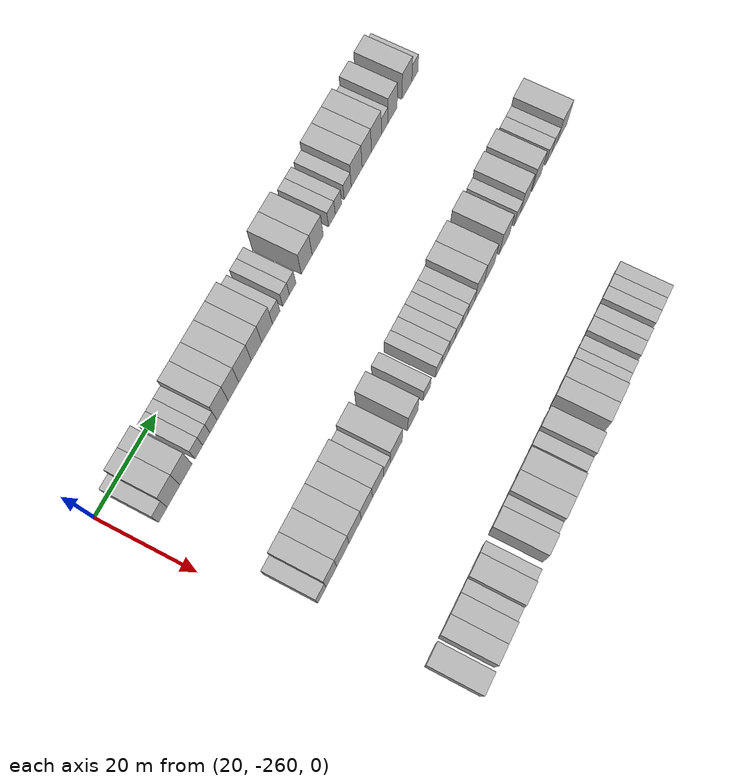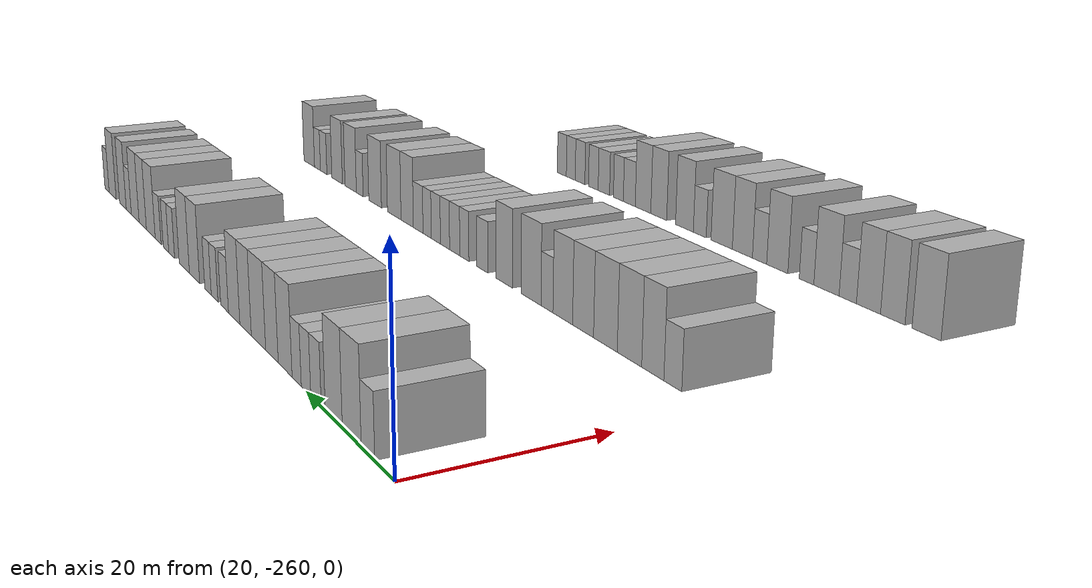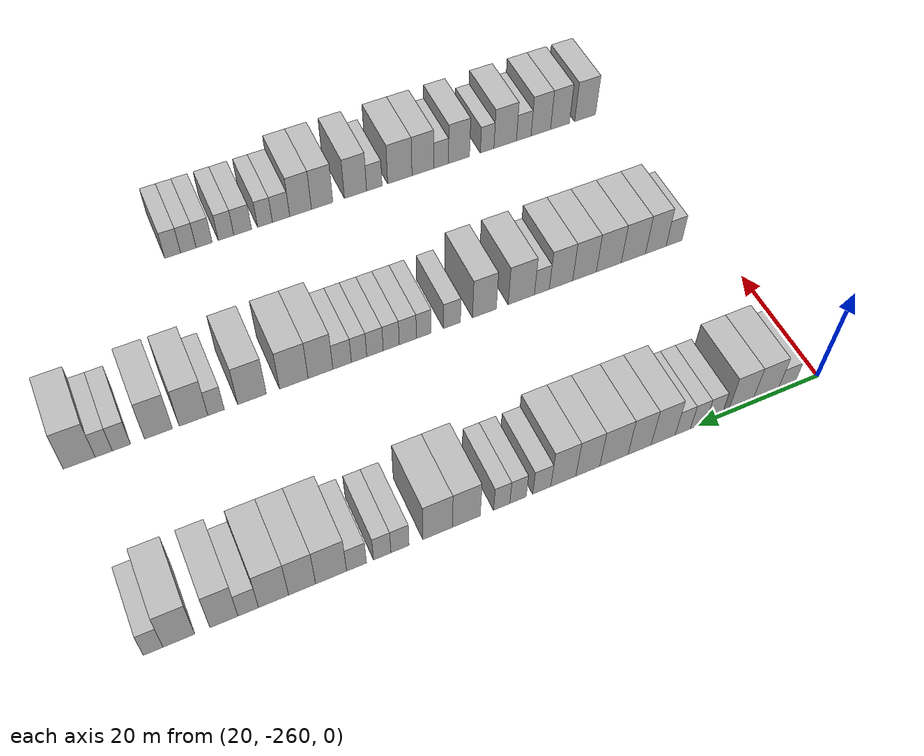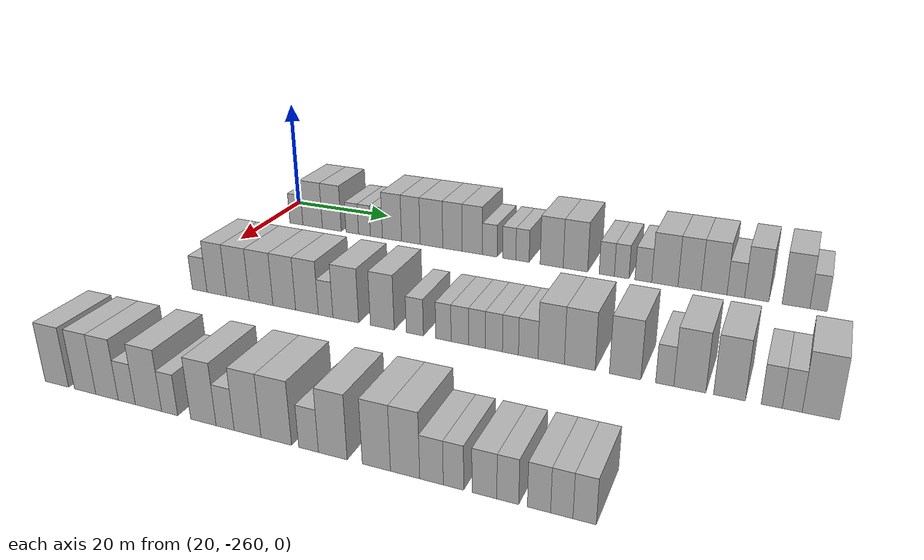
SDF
<sdf version="1.6">
 <world name="default">
  <model name="building_45">
   <static>1</static>
   <pose>25.0000 -254.4149 0 0.000000 0.000000 0.000000</pose>
   <link name="link">
    <pose>0 0 3.00 0 0 0</pose>
    <collision name="collision"><geometry><box><size>10.0000 2.8730 6.0000</size></box></geometry></collision>
    <visual name="visual">
     <cast_shadows>0</cast_shadows>
     <geometry><box><size>10.0000 2.8730 6.0000</size></box></geometry>
     <material>
      <script>
       <uri>model://HANNAS_wall/materials/scripts</uri>
       <uri>model://HANNAS_wall/materials/textures</uri>
       <name>vrc/HANNAS_wall</name>
      </script>
     </material>
    </visual>
   </link>
  </model>
  <model name="building_46">
   <static>1</static>
   <pose>25.0000 -250.8645 0 0.000000 0.000000 0.000000</pose>
   <link name="link">
    <pose>0 0 4.50 0 0 0</pose>
    <collision name="collision"><geometry><box><size>10.0000 4.2280 9.0000</size></box></geometry></collision>
    <visual name="visual">
     <cast_shadows>0</cast_shadows>
     <geometry><box><size>10.0000 4.2280 9.0000</size></box></geometry>
     <material>
      <script>
       <uri>model://HANNAS_wall/materials/scripts</uri>
       <uri>model://HANNAS_wall/materials/textures</uri>
       <name>vrc/HANNAS_wall</name>
      </script>
     </material>
    </visual>
   </link>
  </model>
  <model name="building_47">
   <static>1</static>
   <pose>25.0000 -246.7290 0 0.000000 0.000000 0.000000</pose>
   <link name="link">
    <pose>0 0 4.50 0 0 0</pose>
    <collision name="collision"><geometry><box><size>10.0000 4.0431 9.0000</size></box></geometry></collision>
    <visual name="visual">
     <cast_shadows>0</cast_shadows>
     <geometry><box><size>10.0000 4.0431 9.0000</size></box></geometry>
     <material>
      <script>
       <uri>model://HANNAS_wall/materials/scripts</uri>
       <uri>model://HANNAS_wall/materials/textures</uri>
       <name>vrc/HANNAS_wall</name>
      </script>
     </material>
    </visual>
   </link>
  </model>
  <model name="building_48">
   <static>1</static>
   <pose>25.0000 -242.3892 0 0.000000 0.000000 0.000000</pose>
   <link name="link">
    <pose>0 0 3.00 0 0 0</pose>
    <collision name="collision"><geometry><box><size>10.0000 2.6364 6.0000</size></box></geometry></collision>
    <visual name="visual">
     <cast_shadows>0</cast_shadows>
     <geometry><box><size>10.0000 2.6364 6.0000</size></box></geometry>
     <material>
      <script>
       <uri>model://HANNAS_wall/materials/scripts</uri>
       <uri>model://HANNAS_wall/materials/textures</uri>
       <name>vrc/HANNAS_wall</name>
      </script>
     </material>
    </visual>
   </link>
  </model>
  <model name="building_49">
   <static>1</static>
   <pose>25.0000 -239.8340 0 0.000000 0.000000 0.000000</pose>
   <link name="link">
    <pose>0 0 3.00 0 0 0</pose>
    <collision name="collision"><geometry><box><size>10.0000 2.4740 6.0000</size></box></geometry></collision>
    <visual name="visual">
     <cast_shadows>0</cast_shadows>
     <geometry><box><size>10.0000 2.4740 6.0000</size></box></geometry>
     <material>
      <script>
       <uri>model://HANNAS_wall/materials/scripts</uri>
       <uri>model://HANNAS_wall/materials/textures</uri>
       <name>vrc/HANNAS_wall</name>
      </script>
     </material>
    </visual>
   </link>
  </model>
  <model name="building_50">
   <static>1</static>
   <pose>25.0000 -237.3572 0 0.000000 0.000000 0.000000</pose>
   <link name="link">
    <pose>0 0 3.00 0 0 0</pose>
    <collision name="collision"><geometry><box><size>10.0000 2.4794 6.0000</size></box></geometry></collision>
    <visual name="visual">
     <cast_shadows>0</cast_shadows>
     <geometry><box><size>10.0000 2.4794 6.0000</size></box></geometry>
     <material>
      <script>
       <uri>model://HANNAS_wall/materials/scripts</uri>
       <uri>model://HANNAS_wall/materials/textures</uri>
       <name>vrc/HANNAS_wall</name>
      </script>
     </material>
    </visual>
   </link>
  </model>
  <model name="building_51">
   <static>1</static>
   <pose>25.0000 -234.1744 0 0.000000 0.000000 0.000000</pose>
   <link name="link">
    <pose>0 0 4.50 0 0 0</pose>
    <collision name="collision"><geometry><box><size>10.0000 3.8864 9.0000</size></box></geometry></collision>
    <visual name="visual">
     <cast_shadows>0</cast_shadows>
     <geometry><box><size>10.0000 3.8864 9.0000</size></box></geometry>
     <material>
      <script>
       <uri>model://HANNAS_wall/materials/scripts</uri>
       <uri>model://HANNAS_wall/materials/textures</uri>
       <name>vrc/HANNAS_wall</name>
      </script>
     </material>
    </visual>
   </link>
  </model>
  <model name="building_52">
   <static>1</static>
   <pose>25.0000 -230.3810 0 0.000000 0.000000 0.000000</pose>
   <link name="link">
    <pose>0 0 4.50 0 0 0</pose>
    <collision name="collision"><geometry><box><size>10.0000 3.7002 9.0000</size></box></geometry></collision>
    <visual name="visual">
     <cast_shadows>0</cast_shadows>
     <geometry><box><size>10.0000 3.7002 9.0000</size></box></geometry>
     <material>
      <script>
       <uri>model://HANNAS_wall/materials/scripts</uri>
       <uri>model://HANNAS_wall/materials/textures</uri>
       <name>vrc/HANNAS_wall</name>
      </script>
     </material>
    </visual>
   </link>
  </model>
  <model name="building_53">
   <static>1</static>
   <pose>25.0000 -226.3039 0 0.000000 0.000000 0.000000</pose>
   <link name="link">
    <pose>0 0 4.50 0 0 0</pose>
    <collision name="collision"><geometry><box><size>10.0000 4.4540 9.0000</size></box></geometry></collision>
    <visual name="visual">
     <cast_shadows>0</cast_shadows>
     <geometry><box><size>10.0000 4.4540 9.0000</size></box></geometry>
     <material>
      <script>
       <uri>model://HANNAS_wall/materials/scripts</uri>
       <uri>model://HANNAS_wall/materials/textures</uri>
       <name>vrc/HANNAS_wall</name>
      </script>
     </material>
    </visual>
   </link>
  </model>
  <model name="building_54">
   <static>1</static>
   <pose>25.0000 -222.2061 0 0.000000 0.000000 0.000000</pose>
   <link name="link">
    <pose>0 0 4.50 0 0 0</pose>
    <collision name="collision"><geometry><box><size>10.0000 3.7416 9.0000</size></box></geometry></collision>
    <visual name="visual">
     <cast_shadows>0</cast_shadows>
     <geometry><box><size>10.0000 3.7416 9.0000</size></box></geometry>
     <material>
      <script>
       <uri>model://HANNAS_wall/materials/scripts</uri>
       <uri>model://HANNAS_wall/materials/textures</uri>
       <name>vrc/HANNAS_wall</name>
      </script>
     </material>
    </visual>
   </link>
  </model>
  <model name="building_55">
   <static>1</static>
   <pose>25.0000 -218.3977 0 0.000000 0.000000 0.000000</pose>
   <link name="link">
    <pose>0 0 4.50 0 0 0</pose>
    <collision name="collision"><geometry><box><size>10.0000 3.8752 9.0000</size></box></geometry></collision>
    <visual name="visual">
     <cast_shadows>0</cast_shadows>
     <geometry><box><size>10.0000 3.8752 9.0000</size></box></geometry>
     <material>
      <script>
       <uri>model://HANNAS_wall/materials/scripts</uri>
       <uri>model://HANNAS_wall/materials/textures</uri>
       <name>vrc/HANNAS_wall</name>
      </script>
     </material>
    </visual>
   </link>
  </model>
  <model name="building_56">
   <static>1</static>
   <pose>25.0000 -215.0832 0 0.000000 0.000000 0.000000</pose>
   <link name="link">
    <pose>0 0 3.00 0 0 0</pose>
    <collision name="collision"><geometry><box><size>10.0000 2.7538 6.0000</size></box></geometry></collision>
    <visual name="visual">
     <cast_shadows>0</cast_shadows>
     <geometry><box><size>10.0000 2.7538 6.0000</size></box></geometry>
     <material>
      <script>
       <uri>model://HANNAS_wall/materials/scripts</uri>
       <uri>model://HANNAS_wall/materials/textures</uri>
       <name>vrc/HANNAS_wall</name>
      </script>
     </material>
    </visual>
   </link>
  </model>
  <model name="building_57">
   <static>1</static>
   <pose>25.0000 -211.4747 0 0.000000 0.000000 0.000000</pose>
   <link name="link">
    <pose>0 0 3.00 0 0 0</pose>
    <collision name="collision"><geometry><box><size>10.0000 2.4631 6.0000</size></box></geometry></collision>
    <visual name="visual">
     <cast_shadows>0</cast_shadows>
     <geometry><box><size>10.0000 2.4631 6.0000</size></box></geometry>
     <material>
      <script>
       <uri>model://HANNAS_wall/materials/scripts</uri>
       <uri>model://HANNAS_wall/materials/textures</uri>
       <name>vrc/HANNAS_wall</name>
      </script>
     </material>
    </visual>
   </link>
  </model>
  <model name="building_58">
   <static>1</static>
   <pose>25.0000 -209.0251 0 0.000000 0.000000 0.000000</pose>
   <link name="link">
    <pose>0 0 3.00 0 0 0</pose>
    <collision name="collision"><geometry><box><size>10.0000 2.4362 6.0000</size></box></geometry></collision>
    <visual name="visual">
     <cast_shadows>0</cast_shadows>
     <geometry><box><size>10.0000 2.4362 6.0000</size></box></geometry>
     <material>
      <script>
       <uri>model://HANNAS_wall/materials/scripts</uri>
       <uri>model://HANNAS_wall/materials/textures</uri>
       <name>vrc/HANNAS_wall</name>
      </script>
     </material>
    </visual>
   </link>
  </model>
  <model name="building_59">
   <static>1</static>
   <pose>25.0000 -203.7459 0 0.000000 0.000000 0.000000</pose>
   <link name="link">
    <pose>0 0 4.50 0 0 0</pose>
    <collision name="collision"><geometry><box><size>10.0000 4.1222 9.0000</size></box></geometry></collision>
    <visual name="visual">
     <cast_shadows>0</cast_shadows>
     <geometry><box><size>10.0000 4.1222 9.0000</size></box></geometry>
     <material>
      <script>
       <uri>model://HANNAS_wall/materials/scripts</uri>
       <uri>model://HANNAS_wall/materials/textures</uri>
       <name>vrc/HANNAS_wall</name>
      </script>
     </material>
    </visual>
   </link>
  </model>
  <model name="building_60">
   <static>1</static>
   <pose>25.0000 -199.5396 0 0.000000 0.000000 0.000000</pose>
   <link name="link">
    <pose>0 0 4.50 0 0 0</pose>
    <collision name="collision"><geometry><box><size>10.0000 4.2904 9.0000</size></box></geometry></collision>
    <visual name="visual">
     <cast_shadows>0</cast_shadows>
     <geometry><box><size>10.0000 4.2904 9.0000</size></box></geometry>
     <material>
      <script>
       <uri>model://HANNAS_wall/materials/scripts</uri>
       <uri>model://HANNAS_wall/materials/textures</uri>
       <name>vrc/HANNAS_wall</name>
      </script>
     </material>
    </visual>
   </link>
  </model>
  <model name="building_61">
   <static>1</static>
   <pose>25.0000 -194.0951 0 0.000000 0.000000 0.000000</pose>
   <link name="link">
    <pose>0 0 3.00 0 0 0</pose>
    <collision name="collision"><geometry><box><size>10.0000 2.5987 6.0000</size></box></geometry></collision>
    <visual name="visual">
     <cast_shadows>0</cast_shadows>
     <geometry><box><size>10.0000 2.5987 6.0000</size></box></geometry>
     <material>
      <script>
       <uri>model://HANNAS_wall/materials/scripts</uri>
       <uri>model://HANNAS_wall/materials/textures</uri>
       <name>vrc/HANNAS_wall</name>
      </script>
     </material>
    </visual>
   </link>
  </model>
  <model name="building_62">
   <static>1</static>
   <pose>25.0000 -191.5553 0 0.000000 0.000000 0.000000</pose>
   <link name="link">
    <pose>0 0 3.00 0 0 0</pose>
    <collision name="collision"><geometry><box><size>10.0000 2.4808 6.0000</size></box></geometry></collision>
    <visual name="visual">
     <cast_shadows>0</cast_shadows>
     <geometry><box><size>10.0000 2.4808 6.0000</size></box></geometry>
     <material>
      <script>
       <uri>model://HANNAS_wall/materials/scripts</uri>
       <uri>model://HANNAS_wall/materials/textures</uri>
       <name>vrc/HANNAS_wall</name>
      </script>
     </material>
    </visual>
   </link>
  </model>
  <model name="building_63">
   <static>1</static>
   <pose>25.0000 -187.9170 0 0.000000 0.000000 0.000000</pose>
   <link name="link">
    <pose>0 0 3.00 0 0 0</pose>
    <collision name="collision"><geometry><box><size>10.0000 2.7958 6.0000</size></box></geometry></collision>
    <visual name="visual">
     <cast_shadows>0</cast_shadows>
     <geometry><box><size>10.0000 2.7958 6.0000</size></box></geometry>
     <material>
      <script>
       <uri>model://HANNAS_wall/materials/scripts</uri>
       <uri>model://HANNAS_wall/materials/textures</uri>
       <name>vrc/HANNAS_wall</name>
      </script>
     </material>
    </visual>
   </link>
  </model>
  <model name="building_64">
   <static>1</static>
   <pose>25.0000 -184.3635 0 0.000000 0.000000 0.000000</pose>
   <link name="link">
    <pose>0 0 4.50 0 0 0</pose>
    <collision name="collision"><geometry><box><size>10.0000 4.3112 9.0000</size></box></geometry></collision>
    <visual name="visual">
     <cast_shadows>0</cast_shadows>
     <geometry><box><size>10.0000 4.3112 9.0000</size></box></geometry>
     <material>
      <script>
       <uri>model://HANNAS_wall/materials/scripts</uri>
       <uri>model://HANNAS_wall/materials/textures</uri>
       <name>vrc/HANNAS_wall</name>
      </script>
     </material>
    </visual>
   </link>
  </model>
  <model name="building_65">
   <static>1</static>
   <pose>25.0000 -180.3414 0 0.000000 0.000000 0.000000</pose>
   <link name="link">
    <pose>0 0 4.50 0 0 0</pose>
    <collision name="collision"><geometry><box><size>10.0000 3.7328 9.0000</size></box></geometry></collision>
    <visual name="visual">
     <cast_shadows>0</cast_shadows>
     <geometry><box><size>10.0000 3.7328 9.0000</size></box></geometry>
     <material>
      <script>
       <uri>model://HANNAS_wall/materials/scripts</uri>
       <uri>model://HANNAS_wall/materials/textures</uri>
       <name>vrc/HANNAS_wall</name>
      </script>
     </material>
    </visual>
   </link>
  </model>
  <model name="building_66">
   <static>1</static>
   <pose>25.0000 -176.4290 0 0.000000 0.000000 0.000000</pose>
   <link name="link">
    <pose>0 0 4.50 0 0 0</pose>
    <collision name="collision"><geometry><box><size>10.0000 4.0920 9.0000</size></box></geometry></collision>
    <visual name="visual">
     <cast_shadows>0</cast_shadows>
     <geometry><box><size>10.0000 4.0920 9.0000</size></box></geometry>
     <material>
      <script>
       <uri>model://HANNAS_wall/materials/scripts</uri>
       <uri>model://HANNAS_wall/materials/textures</uri>
       <name>vrc/HANNAS_wall</name>
      </script>
     </material>
    </visual>
   </link>
  </model>
  <model name="building_67">
   <static>1</static>
   <pose>25.0000 -173.0050 0 0.000000 0.000000 0.000000</pose>
   <link name="link">
    <pose>0 0 3.00 0 0 0</pose>
    <collision name="collision"><geometry><box><size>10.0000 2.7562 6.0000</size></box></geometry></collision>
    <visual name="visual">
     <cast_shadows>0</cast_shadows>
     <geometry><box><size>10.0000 2.7562 6.0000</size></box></geometry>
     <material>
      <script>
       <uri>model://HANNAS_wall/materials/scripts</uri>
       <uri>model://HANNAS_wall/materials/textures</uri>
       <name>vrc/HANNAS_wall</name>
      </script>
     </material>
    </visual>
   </link>
  </model>
  <model name="building_68">
   <static>1</static>
   <pose>25.0000 -169.7581 0 0.000000 0.000000 0.000000</pose>
   <link name="link">
    <pose>0 0 4.50 0 0 0</pose>
    <collision name="collision"><geometry><box><size>10.0000 3.7376 9.0000</size></box></geometry></collision>
    <visual name="visual">
     <cast_shadows>0</cast_shadows>
     <geometry><box><size>10.0000 3.7376 9.0000</size></box></geometry>
     <material>
      <script>
       <uri>model://HANNAS_wall/materials/scripts</uri>
       <uri>model://HANNAS_wall/materials/textures</uri>
       <name>vrc/HANNAS_wall</name>
      </script>
     </material>
    </visual>
   </link>
  </model>
  <model name="building_69">
   <static>1</static>
   <pose>25.0000 -163.8145 0 0.000000 0.000000 0.000000</pose>
   <link name="link">
    <pose>0 0 4.50 0 0 0</pose>
    <collision name="collision"><geometry><box><size>10.0000 4.1495 9.0000</size></box></geometry></collision>
    <visual name="visual">
     <cast_shadows>0</cast_shadows>
     <geometry><box><size>10.0000 4.1495 9.0000</size></box></geometry>
     <material>
      <script>
       <uri>model://HANNAS_wall/materials/scripts</uri>
       <uri>model://HANNAS_wall/materials/textures</uri>
       <name>vrc/HANNAS_wall</name>
      </script>
     </material>
    </visual>
   </link>
  </model>
  <model name="building_70">
   <static>1</static>
   <pose>25.0000 -160.4586 0 0.000000 0.000000 0.000000</pose>
   <link name="link">
    <pose>0 0 3.00 0 0 0</pose>
    <collision name="collision"><geometry><box><size>10.0000 2.5623 6.0000</size></box></geometry></collision>
    <visual name="visual">
     <cast_shadows>0</cast_shadows>
     <geometry><box><size>10.0000 2.5623 6.0000</size></box></geometry>
     <material>
      <script>
       <uri>model://HANNAS_wall/materials/scripts</uri>
       <uri>model://HANNAS_wall/materials/textures</uri>
       <name>vrc/HANNAS_wall</name>
      </script>
     </material>
    </visual>
   </link>
  </model>
  <model name="building_277">
   <static>1</static>
   <pose>55.0000 -253.8782 0 0.000000 0.000000 0.000000</pose>
   <link name="link">
    <pose>0 0 3.00 0 0 0</pose>
    <collision name="collision"><geometry><box><size>10.0000 2.8732 6.0000</size></box></geometry></collision>
    <visual name="visual">
     <cast_shadows>0</cast_shadows>
     <geometry><box><size>10.0000 2.8732 6.0000</size></box></geometry>
     <material>
      <script>
       <uri>model://HANNAS_wall/materials/scripts</uri>
       <uri>model://HANNAS_wall/materials/textures</uri>
       <name>vrc/HANNAS_wall</name>
      </script>
     </material>
    </visual>
   </link>
  </model>
  <model name="building_278">
   <static>1</static>
   <pose>55.0000 -250.5771 0 0.000000 0.000000 0.000000</pose>
   <link name="link">
    <pose>0 0 4.50 0 0 0</pose>
    <collision name="collision"><geometry><box><size>10.0000 3.7289 9.0000</size></box></geometry></collision>
    <visual name="visual">
     <cast_shadows>0</cast_shadows>
     <geometry><box><size>10.0000 3.7289 9.0000</size></box></geometry>
     <material>
      <script>
       <uri>model://HANNAS_wall/materials/scripts</uri>
       <uri>model://HANNAS_wall/materials/textures</uri>
       <name>vrc/HANNAS_wall</name>
      </script>
     </material>
    </visual>
   </link>
  </model>
  <model name="building_279">
   <static>1</static>
   <pose>55.0000 -246.5571 0 0.000000 0.000000 0.000000</pose>
   <link name="link">
    <pose>0 0 4.50 0 0 0</pose>
    <collision name="collision"><geometry><box><size>10.0000 4.3112 9.0000</size></box></geometry></collision>
    <visual name="visual">
     <cast_shadows>0</cast_shadows>
     <geometry><box><size>10.0000 4.3112 9.0000</size></box></geometry>
     <material>
      <script>
       <uri>model://HANNAS_wall/materials/scripts</uri>
       <uri>model://HANNAS_wall/materials/textures</uri>
       <name>vrc/HANNAS_wall</name>
      </script>
     </material>
    </visual>
   </link>
  </model>
  <model name="building_280">
   <static>1</static>
   <pose>55.0000 -242.1949 0 0.000000 0.000000 0.000000</pose>
   <link name="link">
    <pose>0 0 4.50 0 0 0</pose>
    <collision name="collision"><geometry><box><size>10.0000 4.4130 9.0000</size></box></geometry></collision>
    <visual name="visual">
     <cast_shadows>0</cast_shadows>
     <geometry><box><size>10.0000 4.4130 9.0000</size></box></geometry>
     <material>
      <script>
       <uri>model://HANNAS_wall/materials/scripts</uri>
       <uri>model://HANNAS_wall/materials/textures</uri>
       <name>vrc/HANNAS_wall</name>
      </script>
     </material>
    </visual>
   </link>
  </model>
  <model name="building_281">
   <static>1</static>
   <pose>55.0000 -237.9302 0 0.000000 0.000000 0.000000</pose>
   <link name="link">
    <pose>0 0 4.50 0 0 0</pose>
    <collision name="collision"><geometry><box><size>10.0000 4.1164 9.0000</size></box></geometry></collision>
    <visual name="visual">
     <cast_shadows>0</cast_shadows>
     <geometry><box><size>10.0000 4.1164 9.0000</size></box></geometry>
     <material>
      <script>
       <uri>model://HANNAS_wall/materials/scripts</uri>
       <uri>model://HANNAS_wall/materials/textures</uri>
       <name>vrc/HANNAS_wall</name>
      </script>
     </material>
    </visual>
   </link>
  </model>
  <model name="building_282">
   <static>1</static>
   <pose>55.0000 -233.8531 0 0.000000 0.000000 0.000000</pose>
   <link name="link">
    <pose>0 0 4.50 0 0 0</pose>
    <collision name="collision"><geometry><box><size>10.0000 4.0377 9.0000</size></box></geometry></collision>
    <visual name="visual">
     <cast_shadows>0</cast_shadows>
     <geometry><box><size>10.0000 4.0377 9.0000</size></box></geometry>
     <material>
      <script>
       <uri>model://HANNAS_wall/materials/scripts</uri>
       <uri>model://HANNAS_wall/materials/textures</uri>
       <name>vrc/HANNAS_wall</name>
      </script>
     </material>
    </visual>
   </link>
  </model>
  <model name="building_283">
   <static>1</static>
   <pose>55.0000 -230.5514 0 0.000000 0.000000 0.000000</pose>
   <link name="link">
    <pose>0 0 3.00 0 0 0</pose>
    <collision name="collision"><geometry><box><size>10.0000 2.5658 6.0000</size></box></geometry></collision>
    <visual name="visual">
     <cast_shadows>0</cast_shadows>
     <geometry><box><size>10.0000 2.5658 6.0000</size></box></geometry>
     <material>
      <script>
       <uri>model://HANNAS_wall/materials/scripts</uri>
       <uri>model://HANNAS_wall/materials/textures</uri>
       <name>vrc/HANNAS_wall</name>
      </script>
     </material>
    </visual>
   </link>
  </model>
  <model name="building_284">
   <static>1</static>
   <pose>55.0000 -227.0444 0 0.000000 0.000000 0.000000</pose>
   <link name="link">
    <pose>0 0 4.50 0 0 0</pose>
    <collision name="collision"><geometry><box><size>10.0000 4.4482 9.0000</size></box></geometry></collision>
    <visual name="visual">
     <cast_shadows>0</cast_shadows>
     <geometry><box><size>10.0000 4.4482 9.0000</size></box></geometry>
     <material>
      <script>
       <uri>model://HANNAS_wall/materials/scripts</uri>
       <uri>model://HANNAS_wall/materials/textures</uri>
       <name>vrc/HANNAS_wall</name>
      </script>
     </material>
    </visual>
   </link>
  </model>
  <model name="building_285">
   <static>1</static>
   <pose>55.0000 -220.8348 0 0.000000 0.000000 0.000000</pose>
   <link name="link">
    <pose>0 0 4.50 0 0 0</pose>
    <collision name="collision"><geometry><box><size>10.0000 3.9709 9.0000</size></box></geometry></collision>
    <visual name="visual">
     <cast_shadows>0</cast_shadows>
     <geometry><box><size>10.0000 3.9709 9.0000</size></box></geometry>
     <material>
      <script>
       <uri>model://HANNAS_wall/materials/scripts</uri>
       <uri>model://HANNAS_wall/materials/textures</uri>
       <name>vrc/HANNAS_wall</name>
      </script>
     </material>
    </visual>
   </link>
  </model>
  <model name="building_286">
   <static>1</static>
   <pose>55.0000 -215.4607 0 0.000000 0.000000 0.000000</pose>
   <link name="link">
    <pose>0 0 3.00 0 0 0</pose>
    <collision name="collision"><geometry><box><size>10.0000 2.7771 6.0000</size></box></geometry></collision>
    <visual name="visual">
     <cast_shadows>0</cast_shadows>
     <geometry><box><size>10.0000 2.7771 6.0000</size></box></geometry>
     <material>
      <script>
       <uri>model://HANNAS_wall/materials/scripts</uri>
       <uri>model://HANNAS_wall/materials/textures</uri>
       <name>vrc/HANNAS_wall</name>
      </script>
     </material>
    </visual>
   </link>
  </model>
  <model name="building_287">
   <static>1</static>
   <pose>55.0000 -210.8604 0 0.000000 0.000000 0.000000</pose>
   <link name="link">
    <pose>0 0 3.00 0 0 0</pose>
    <collision name="collision"><geometry><box><size>10.0000 2.4237 6.0000</size></box></geometry></collision>
    <visual name="visual">
     <cast_shadows>0</cast_shadows>
     <geometry><box><size>10.0000 2.4237 6.0000</size></box></geometry>
     <material>
      <script>
       <uri>model://HANNAS_wall/materials/scripts</uri>
       <uri>model://HANNAS_wall/materials/textures</uri>
       <name>vrc/HANNAS_wall</name>
      </script>
     </material>
    </visual>
   </link>
  </model>
  <model name="building_288">
   <static>1</static>
   <pose>55.0000 -208.2690 0 0.000000 0.000000 0.000000</pose>
   <link name="link">
    <pose>0 0 3.00 0 0 0</pose>
    <collision name="collision"><geometry><box><size>10.0000 2.7591 6.0000</size></box></geometry></collision>
    <visual name="visual">
     <cast_shadows>0</cast_shadows>
     <geometry><box><size>10.0000 2.7591 6.0000</size></box></geometry>
     <material>
      <script>
       <uri>model://HANNAS_wall/materials/scripts</uri>
       <uri>model://HANNAS_wall/materials/textures</uri>
       <name>vrc/HANNAS_wall</name>
      </script>
     </material>
    </visual>
   </link>
  </model>
  <model name="building_289">
   <static>1</static>
   <pose>55.0000 -205.6049 0 0.000000 0.000000 0.000000</pose>
   <link name="link">
    <pose>0 0 3.00 0 0 0</pose>
    <collision name="collision"><geometry><box><size>10.0000 2.5691 6.0000</size></box></geometry></collision>
    <visual name="visual">
     <cast_shadows>0</cast_shadows>
     <geometry><box><size>10.0000 2.5691 6.0000</size></box></geometry>
     <material>
      <script>
       <uri>model://HANNAS_wall/materials/scripts</uri>
       <uri>model://HANNAS_wall/materials/textures</uri>
       <name>vrc/HANNAS_wall</name>
      </script>
     </material>
    </visual>
   </link>
  </model>
  <model name="building_290">
   <static>1</static>
   <pose>55.0000 -203.0095 0 0.000000 0.000000 0.000000</pose>
   <link name="link">
    <pose>0 0 3.00 0 0 0</pose>
    <collision name="collision"><geometry><box><size>10.0000 2.6218 6.0000</size></box></geometry></collision>
    <visual name="visual">
     <cast_shadows>0</cast_shadows>
     <geometry><box><size>10.0000 2.6218 6.0000</size></box></geometry>
     <material>
      <script>
       <uri>model://HANNAS_wall/materials/scripts</uri>
       <uri>model://HANNAS_wall/materials/textures</uri>
       <name>vrc/HANNAS_wall</name>
      </script>
     </material>
    </visual>
   </link>
  </model>
  <model name="building_291">
   <static>1</static>
   <pose>55.0000 -200.4884 0 0.000000 0.000000 0.000000</pose>
   <link name="link">
    <pose>0 0 3.00 0 0 0</pose>
    <collision name="collision"><geometry><box><size>10.0000 2.4204 6.0000</size></box></geometry></collision>
    <visual name="visual">
     <cast_shadows>0</cast_shadows>
     <geometry><box><size>10.0000 2.4204 6.0000</size></box></geometry>
     <material>
      <script>
       <uri>model://HANNAS_wall/materials/scripts</uri>
       <uri>model://HANNAS_wall/materials/textures</uri>
       <name>vrc/HANNAS_wall</name>
      </script>
     </material>
    </visual>
   </link>
  </model>
  <model name="building_292">
   <static>1</static>
   <pose>55.0000 -197.8242 0 0.000000 0.000000 0.000000</pose>
   <link name="link">
    <pose>0 0 3.00 0 0 0</pose>
    <collision name="collision"><geometry><box><size>10.0000 2.9081 6.0000</size></box></geometry></collision>
    <visual name="visual">
     <cast_shadows>0</cast_shadows>
     <geometry><box><size>10.0000 2.9081 6.0000</size></box></geometry>
     <material>
      <script>
       <uri>model://HANNAS_wall/materials/scripts</uri>
       <uri>model://HANNAS_wall/materials/textures</uri>
       <name>vrc/HANNAS_wall</name>
      </script>
     </material>
    </visual>
   </link>
  </model>
  <model name="building_293">
   <static>1</static>
   <pose>55.0000 -194.4478 0 0.000000 0.000000 0.000000</pose>
   <link name="link">
    <pose>0 0 4.50 0 0 0</pose>
    <collision name="collision"><geometry><box><size>10.0000 3.8445 9.0000</size></box></geometry></collision>
    <visual name="visual">
     <cast_shadows>0</cast_shadows>
     <geometry><box><size>10.0000 3.8445 9.0000</size></box></geometry>
     <material>
      <script>
       <uri>model://HANNAS_wall/materials/scripts</uri>
       <uri>model://HANNAS_wall/materials/textures</uri>
       <name>vrc/HANNAS_wall</name>
      </script>
     </material>
    </visual>
   </link>
  </model>
  <model name="building_294">
   <static>1</static>
   <pose>55.0000 -190.3253 0 0.000000 0.000000 0.000000</pose>
   <link name="link">
    <pose>0 0 4.50 0 0 0</pose>
    <collision name="collision"><geometry><box><size>10.0000 4.4006 9.0000</size></box></geometry></collision>
    <visual name="visual">
     <cast_shadows>0</cast_shadows>
     <geometry><box><size>10.0000 4.4006 9.0000</size></box></geometry>
     <material>
      <script>
       <uri>model://HANNAS_wall/materials/scripts</uri>
       <uri>model://HANNAS_wall/materials/textures</uri>
       <name>vrc/HANNAS_wall</name>
      </script>
     </material>
    </visual>
   </link>
  </model>
  <model name="building_295">
   <static>1</static>
   <pose>55.0000 -183.9527 0 0.000000 0.000000 0.000000</pose>
   <link name="link">
    <pose>0 0 4.50 0 0 0</pose>
    <collision name="collision"><geometry><box><size>10.0000 4.3446 9.0000</size></box></geometry></collision>
    <visual name="visual">
     <cast_shadows>0</cast_shadows>
     <geometry><box><size>10.0000 4.3446 9.0000</size></box></geometry>
     <material>
      <script>
       <uri>model://HANNAS_wall/materials/scripts</uri>
       <uri>model://HANNAS_wall/materials/textures</uri>
       <name>vrc/HANNAS_wall</name>
      </script>
     </material>
    </visual>
   </link>
  </model>
  <model name="building_296">
   <static>1</static>
   <pose>55.0000 -178.5568 0 0.000000 0.000000 0.000000</pose>
   <link name="link">
    <pose>0 0 3.00 0 0 0</pose>
    <collision name="collision"><geometry><box><size>10.0000 2.4471 6.0000</size></box></geometry></collision>
    <visual name="visual">
     <cast_shadows>0</cast_shadows>
     <geometry><box><size>10.0000 2.4471 6.0000</size></box></geometry>
     <material>
      <script>
       <uri>model://HANNAS_wall/materials/scripts</uri>
       <uri>model://HANNAS_wall/materials/textures</uri>
       <name>vrc/HANNAS_wall</name>
      </script>
     </material>
    </visual>
   </link>
  </model>
  <model name="building_297">
   <static>1</static>
   <pose>55.0000 -175.2295 0 0.000000 0.000000 0.000000</pose>
   <link name="link">
    <pose>0 0 4.50 0 0 0</pose>
    <collision name="collision"><geometry><box><size>10.0000 4.2075 9.0000</size></box></geometry></collision>
    <visual name="visual">
     <cast_shadows>0</cast_shadows>
     <geometry><box><size>10.0000 4.2075 9.0000</size></box></geometry>
     <material>
      <script>
       <uri>model://HANNAS_wall/materials/scripts</uri>
       <uri>model://HANNAS_wall/materials/textures</uri>
       <name>vrc/HANNAS_wall</name>
      </script>
     </material>
    </visual>
   </link>
  </model>
  <model name="building_298">
   <static>1</static>
   <pose>55.0000 -170.0928 0 0.000000 0.000000 0.000000</pose>
   <link name="link">
    <pose>0 0 4.50 0 0 0</pose>
    <collision name="collision"><geometry><box><size>10.0000 4.0660 9.0000</size></box></geometry></collision>
    <visual name="visual">
     <cast_shadows>0</cast_shadows>
     <geometry><box><size>10.0000 4.0660 9.0000</size></box></geometry>
     <material>
      <script>
       <uri>model://HANNAS_wall/materials/scripts</uri>
       <uri>model://HANNAS_wall/materials/textures</uri>
       <name>vrc/HANNAS_wall</name>
      </script>
     </material>
    </visual>
   </link>
  </model>
  <model name="building_299">
   <static>1</static>
   <pose>55.0000 -164.7534 0 0.000000 0.000000 0.000000</pose>
   <link name="link">
    <pose>0 0 3.00 0 0 0</pose>
    <collision name="collision"><geometry><box><size>10.0000 2.6128 6.0000</size></box></geometry></collision>
    <visual name="visual">
     <cast_shadows>0</cast_shadows>
     <geometry><box><size>10.0000 2.6128 6.0000</size></box></geometry>
     <material>
      <script>
       <uri>model://HANNAS_wall/materials/scripts</uri>
       <uri>model://HANNAS_wall/materials/textures</uri>
       <name>vrc/HANNAS_wall</name>
      </script>
     </material>
    </visual>
   </link>
  </model>
  <model name="building_300">
   <static>1</static>
   <pose>55.0000 -162.2337 0 0.000000 0.000000 0.000000</pose>
   <link name="link">
    <pose>0 0 3.00 0 0 0</pose>
    <collision name="collision"><geometry><box><size>10.0000 2.4265 6.0000</size></box></geometry></collision>
    <visual name="visual">
     <cast_shadows>0</cast_shadows>
     <geometry><box><size>10.0000 2.4265 6.0000</size></box></geometry>
     <material>
      <script>
       <uri>model://HANNAS_wall/materials/scripts</uri>
       <uri>model://HANNAS_wall/materials/textures</uri>
       <name>vrc/HANNAS_wall</name>
      </script>
     </material>
    </visual>
   </link>
  </model>
  <model name="building_301">
   <static>1</static>
   <pose>55.0000 -158.7767 0 0.000000 0.000000 0.000000</pose>
   <link name="link">
    <pose>0 0 4.50 0 0 0</pose>
    <collision name="collision"><geometry><box><size>10.0000 4.4875 9.0000</size></box></geometry></collision>
    <visual name="visual">
     <cast_shadows>0</cast_shadows>
     <geometry><box><size>10.0000 4.4875 9.0000</size></box></geometry>
     <material>
      <script>
       <uri>model://HANNAS_wall/materials/scripts</uri>
       <uri>model://HANNAS_wall/materials/textures</uri>
       <name>vrc/HANNAS_wall</name>
      </script>
     </material>
    </visual>
   </link>
  </model>
  <model name="building_504">
   <static>1</static>
   <pose>85.0000 -254.2649 0 0.000000 0.000000 0.000000</pose>
   <link name="link">
    <pose>0 0 4.50 0 0 0</pose>
    <collision name="collision"><geometry><box><size>10.0000 4.0331 9.0000</size></box></geometry></collision>
    <visual name="visual">
     <cast_shadows>0</cast_shadows>
     <geometry><box><size>10.0000 4.0331 9.0000</size></box></geometry>
     <material>
      <script>
       <uri>model://HANNAS_wall/materials/scripts</uri>
       <uri>model://HANNAS_wall/materials/textures</uri>
       <name>vrc/HANNAS_wall</name>
      </script>
     </material>
    </visual>
   </link>
  </model>
  <model name="building_505">
   <static>1</static>
   <pose>85.0000 -249.4438 0 0.000000 0.000000 0.000000</pose>
   <link name="link">
    <pose>0 0 4.50 0 0 0</pose>
    <collision name="collision"><geometry><box><size>10.0000 3.6092 9.0000</size></box></geometry></collision>
    <visual name="visual">
     <cast_shadows>0</cast_shadows>
     <geometry><box><size>10.0000 3.6092 9.0000</size></box></geometry>
     <material>
      <script>
       <uri>model://HANNAS_wall/materials/scripts</uri>
       <uri>model://HANNAS_wall/materials/textures</uri>
       <name>vrc/HANNAS_wall</name>
      </script>
     </material>
    </visual>
   </link>
  </model>
  <model name="building_506">
   <static>1</static>
   <pose>85.0000 -245.7915 0 0.000000 0.000000 0.000000</pose>
   <link name="link">
    <pose>0 0 4.50 0 0 0</pose>
    <collision name="collision"><geometry><box><size>10.0000 3.6953 9.0000</size></box></geometry></collision>
    <visual name="visual">
     <cast_shadows>0</cast_shadows>
     <geometry><box><size>10.0000 3.6953 9.0000</size></box></geometry>
     <material>
      <script>
       <uri>model://HANNAS_wall/materials/scripts</uri>
       <uri>model://HANNAS_wall/materials/textures</uri>
       <name>vrc/HANNAS_wall</name>
      </script>
     </material>
    </visual>
   </link>
  </model>
  <model name="building_507">
   <static>1</static>
   <pose>85.0000 -242.5590 0 0.000000 0.000000 0.000000</pose>
   <link name="link">
    <pose>0 0 3.00 0 0 0</pose>
    <collision name="collision"><geometry><box><size>10.0000 2.7696 6.0000</size></box></geometry></collision>
    <visual name="visual">
     <cast_shadows>0</cast_shadows>
     <geometry><box><size>10.0000 2.7696 6.0000</size></box></geometry>
     <material>
      <script>
       <uri>model://HANNAS_wall/materials/scripts</uri>
       <uri>model://HANNAS_wall/materials/textures</uri>
       <name>vrc/HANNAS_wall</name>
      </script>
     </material>
    </visual>
   </link>
  </model>
  <model name="building_508">
   <static>1</static>
   <pose>85.0000 -239.0842 0 0.000000 0.000000 0.000000</pose>
   <link name="link">
    <pose>0 0 4.50 0 0 0</pose>
    <collision name="collision"><geometry><box><size>10.0000 4.1801 9.0000</size></box></geometry></collision>
    <visual name="visual">
     <cast_shadows>0</cast_shadows>
     <geometry><box><size>10.0000 4.1801 9.0000</size></box></geometry>
     <material>
      <script>
       <uri>model://HANNAS_wall/materials/scripts</uri>
       <uri>model://HANNAS_wall/materials/textures</uri>
       <name>vrc/HANNAS_wall</name>
      </script>
     </material>
    </visual>
   </link>
  </model>
  <model name="building_509">
   <static>1</static>
   <pose>85.0000 -235.7392 0 0.000000 0.000000 0.000000</pose>
   <link name="link">
    <pose>0 0 3.00 0 0 0</pose>
    <collision name="collision"><geometry><box><size>10.0000 2.5097 6.0000</size></box></geometry></collision>
    <visual name="visual">
     <cast_shadows>0</cast_shadows>
     <geometry><box><size>10.0000 2.5097 6.0000</size></box></geometry>
     <material>
      <script>
       <uri>model://HANNAS_wall/materials/scripts</uri>
       <uri>model://HANNAS_wall/materials/textures</uri>
       <name>vrc/HANNAS_wall</name>
      </script>
     </material>
    </visual>
   </link>
  </model>
  <model name="building_510">
   <static>1</static>
   <pose>85.0000 -230.5607 0 0.000000 0.000000 0.000000</pose>
   <link name="link">
    <pose>0 0 4.50 0 0 0</pose>
    <collision name="collision"><geometry><box><size>10.0000 3.8473 9.0000</size></box></geometry></collision>
    <visual name="visual">
     <cast_shadows>0</cast_shadows>
     <geometry><box><size>10.0000 3.8473 9.0000</size></box></geometry>
     <material>
      <script>
       <uri>model://HANNAS_wall/materials/scripts</uri>
       <uri>model://HANNAS_wall/materials/textures</uri>
       <name>vrc/HANNAS_wall</name>
      </script>
     </material>
    </visual>
   </link>
  </model>
  <model name="building_511">
   <static>1</static>
   <pose>85.0000 -227.2992 0 0.000000 0.000000 0.000000</pose>
   <link name="link">
    <pose>0 0 3.00 0 0 0</pose>
    <collision name="collision"><geometry><box><size>10.0000 2.6759 6.0000</size></box></geometry></collision>
    <visual name="visual">
     <cast_shadows>0</cast_shadows>
     <geometry><box><size>10.0000 2.6759 6.0000</size></box></geometry>
     <material>
      <script>
       <uri>model://HANNAS_wall/materials/scripts</uri>
       <uri>model://HANNAS_wall/materials/textures</uri>
       <name>vrc/HANNAS_wall</name>
      </script>
     </material>
    </visual>
   </link>
  </model>
  <model name="building_512">
   <static>1</static>
   <pose>85.0000 -224.0077 0 0.000000 0.000000 0.000000</pose>
   <link name="link">
    <pose>0 0 4.50 0 0 0</pose>
    <collision name="collision"><geometry><box><size>10.0000 3.9070 9.0000</size></box></geometry></collision>
    <visual name="visual">
     <cast_shadows>0</cast_shadows>
     <geometry><box><size>10.0000 3.9070 9.0000</size></box></geometry>
     <material>
      <script>
       <uri>model://HANNAS_wall/materials/scripts</uri>
       <uri>model://HANNAS_wall/materials/textures</uri>
       <name>vrc/HANNAS_wall</name>
      </script>
     </material>
    </visual>
   </link>
  </model>
  <model name="building_513">
   <static>1</static>
   <pose>85.0000 -219.8923 0 0.000000 0.000000 0.000000</pose>
   <link name="link">
    <pose>0 0 4.50 0 0 0</pose>
    <collision name="collision"><geometry><box><size>10.0000 4.3239 9.0000</size></box></geometry></collision>
    <visual name="visual">
     <cast_shadows>0</cast_shadows>
     <geometry><box><size>10.0000 4.3239 9.0000</size></box></geometry>
     <material>
      <script>
       <uri>model://HANNAS_wall/materials/scripts</uri>
       <uri>model://HANNAS_wall/materials/textures</uri>
       <name>vrc/HANNAS_wall</name>
      </script>
     </material>
    </visual>
   </link>
  </model>
  <model name="building_514">
   <static>1</static>
   <pose>85.0000 -215.3696 0 0.000000 0.000000 0.000000</pose>
   <link name="link">
    <pose>0 0 3.00 0 0 0</pose>
    <collision name="collision"><geometry><box><size>10.0000 2.7215 6.0000</size></box></geometry></collision>
    <visual name="visual">
     <cast_shadows>0</cast_shadows>
     <geometry><box><size>10.0000 2.7215 6.0000</size></box></geometry>
     <material>
      <script>
       <uri>model://HANNAS_wall/materials/scripts</uri>
       <uri>model://HANNAS_wall/materials/textures</uri>
       <name>vrc/HANNAS_wall</name>
      </script>
     </material>
    </visual>
   </link>
  </model>
  <model name="building_515">
   <static>1</static>
   <pose>85.0000 -212.0657 0 0.000000 0.000000 0.000000</pose>
   <link name="link">
    <pose>0 0 4.50 0 0 0</pose>
    <collision name="collision"><geometry><box><size>10.0000 3.8863 9.0000</size></box></geometry></collision>
    <visual name="visual">
     <cast_shadows>0</cast_shadows>
     <geometry><box><size>10.0000 3.8863 9.0000</size></box></geometry>
     <material>
      <script>
       <uri>model://HANNAS_wall/materials/scripts</uri>
       <uri>model://HANNAS_wall/materials/textures</uri>
       <name>vrc/HANNAS_wall</name>
      </script>
     </material>
    </visual>
   </link>
  </model>
  <model name="building_516">
   <static>1</static>
   <pose>85.0000 -206.2855 0 0.000000 0.000000 0.000000</pose>
   <link name="link">
    <pose>0 0 4.50 0 0 0</pose>
    <collision name="collision"><geometry><box><size>10.0000 3.6742 9.0000</size></box></geometry></collision>
    <visual name="visual">
     <cast_shadows>0</cast_shadows>
     <geometry><box><size>10.0000 3.6742 9.0000</size></box></geometry>
     <material>
      <script>
       <uri>model://HANNAS_wall/materials/scripts</uri>
       <uri>model://HANNAS_wall/materials/textures</uri>
       <name>vrc/HANNAS_wall</name>
      </script>
     </material>
    </visual>
   </link>
  </model>
  <model name="building_517">
   <static>1</static>
   <pose>85.0000 -202.5904 0 0.000000 0.000000 0.000000</pose>
   <link name="link">
    <pose>0 0 4.50 0 0 0</pose>
    <collision name="collision"><geometry><box><size>10.0000 3.7160 9.0000</size></box></geometry></collision>
    <visual name="visual">
     <cast_shadows>0</cast_shadows>
     <geometry><box><size>10.0000 3.7160 9.0000</size></box></geometry>
     <material>
      <script>
       <uri>model://HANNAS_wall/materials/scripts</uri>
       <uri>model://HANNAS_wall/materials/textures</uri>
       <name>vrc/HANNAS_wall</name>
      </script>
     </material>
    </visual>
   </link>
  </model>
  <model name="building_518">
   <static>1</static>
   <pose>85.0000 -199.2646 0 0.000000 0.000000 0.000000</pose>
   <link name="link">
    <pose>0 0 3.00 0 0 0</pose>
    <collision name="collision"><geometry><box><size>10.0000 2.9356 6.0000</size></box></geometry></collision>
    <visual name="visual">
     <cast_shadows>0</cast_shadows>
     <geometry><box><size>10.0000 2.9356 6.0000</size></box></geometry>
     <material>
      <script>
       <uri>model://HANNAS_wall/materials/scripts</uri>
       <uri>model://HANNAS_wall/materials/textures</uri>
       <name>vrc/HANNAS_wall</name>
      </script>
     </material>
    </visual>
   </link>
  </model>
  <model name="building_519">
   <static>1</static>
   <pose>85.0000 -196.5524 0 0.000000 0.000000 0.000000</pose>
   <link name="link">
    <pose>0 0 3.00 0 0 0</pose>
    <collision name="collision"><geometry><box><size>10.0000 2.4889 6.0000</size></box></geometry></collision>
    <visual name="visual">
     <cast_shadows>0</cast_shadows>
     <geometry><box><size>10.0000 2.4889 6.0000</size></box></geometry>
     <material>
      <script>
       <uri>model://HANNAS_wall/materials/scripts</uri>
       <uri>model://HANNAS_wall/materials/textures</uri>
       <name>vrc/HANNAS_wall</name>
      </script>
     </material>
    </visual>
   </link>
  </model>
  <model name="building_520">
   <static>1</static>
   <pose>85.0000 -192.8267 0 0.000000 0.000000 0.000000</pose>
   <link name="link">
    <pose>0 0 3.00 0 0 0</pose>
    <collision name="collision"><geometry><box><size>10.0000 2.9626 6.0000</size></box></geometry></collision>
    <visual name="visual">
     <cast_shadows>0</cast_shadows>
     <geometry><box><size>10.0000 2.9626 6.0000</size></box></geometry>
     <material>
      <script>
       <uri>model://HANNAS_wall/materials/scripts</uri>
       <uri>model://HANNAS_wall/materials/textures</uri>
       <name>vrc/HANNAS_wall</name>
      </script>
     </material>
    </visual>
   </link>
  </model>
  <model name="building_521">
   <static>1</static>
   <pose>85.0000 -190.0594 0 0.000000 0.000000 0.000000</pose>
   <link name="link">
    <pose>0 0 3.00 0 0 0</pose>
    <collision name="collision"><geometry><box><size>10.0000 2.5719 6.0000</size></box></geometry></collision>
    <visual name="visual">
     <cast_shadows>0</cast_shadows>
     <geometry><box><size>10.0000 2.5719 6.0000</size></box></geometry>
     <material>
      <script>
       <uri>model://HANNAS_wall/materials/scripts</uri>
       <uri>model://HANNAS_wall/materials/textures</uri>
       <name>vrc/HANNAS_wall</name>
      </script>
     </material>
    </visual>
   </link>
  </model>
  <model name="building_522">
   <static>1</static>
   <pose>85.0000 -186.4478 0 0.000000 0.000000 0.000000</pose>
   <link name="link">
    <pose>0 0 3.00 0 0 0</pose>
    <collision name="collision"><geometry><box><size>10.0000 2.6514 6.0000</size></box></geometry></collision>
    <visual name="visual">
     <cast_shadows>0</cast_shadows>
     <geometry><box><size>10.0000 2.6514 6.0000</size></box></geometry>
     <material>
      <script>
       <uri>model://HANNAS_wall/materials/scripts</uri>
       <uri>model://HANNAS_wall/materials/textures</uri>
       <name>vrc/HANNAS_wall</name>
      </script>
     </material>
    </visual>
   </link>
  </model>
  <model name="building_523">
   <static>1</static>
   <pose>85.0000 -183.8652 0 0.000000 0.000000 0.000000</pose>
   <link name="link">
    <pose>0 0 3.00 0 0 0</pose>
    <collision name="collision"><geometry><box><size>10.0000 2.5138 6.0000</size></box></geometry></collision>
    <visual name="visual">
     <cast_shadows>0</cast_shadows>
     <geometry><box><size>10.0000 2.5138 6.0000</size></box></geometry>
     <material>
      <script>
       <uri>model://HANNAS_wall/materials/scripts</uri>
       <uri>model://HANNAS_wall/materials/textures</uri>
       <name>vrc/HANNAS_wall</name>
      </script>
     </material>
    </visual>
   </link>
  </model>
  <model name="building_524">
   <static>1</static>
   <pose>85.0000 -181.3179 0 0.000000 0.000000 0.000000</pose>
   <link name="link">
    <pose>0 0 3.00 0 0 0</pose>
    <collision name="collision"><geometry><box><size>10.0000 2.5809 6.0000</size></box></geometry></collision>
    <visual name="visual">
     <cast_shadows>0</cast_shadows>
     <geometry><box><size>10.0000 2.5809 6.0000</size></box></geometry>
     <material>
      <script>
       <uri>model://HANNAS_wall/materials/scripts</uri>
       <uri>model://HANNAS_wall/materials/textures</uri>
       <name>vrc/HANNAS_wall</name>
      </script>
     </material>
    </visual>
   </link>
  </model>
 </world>
</sdf>
